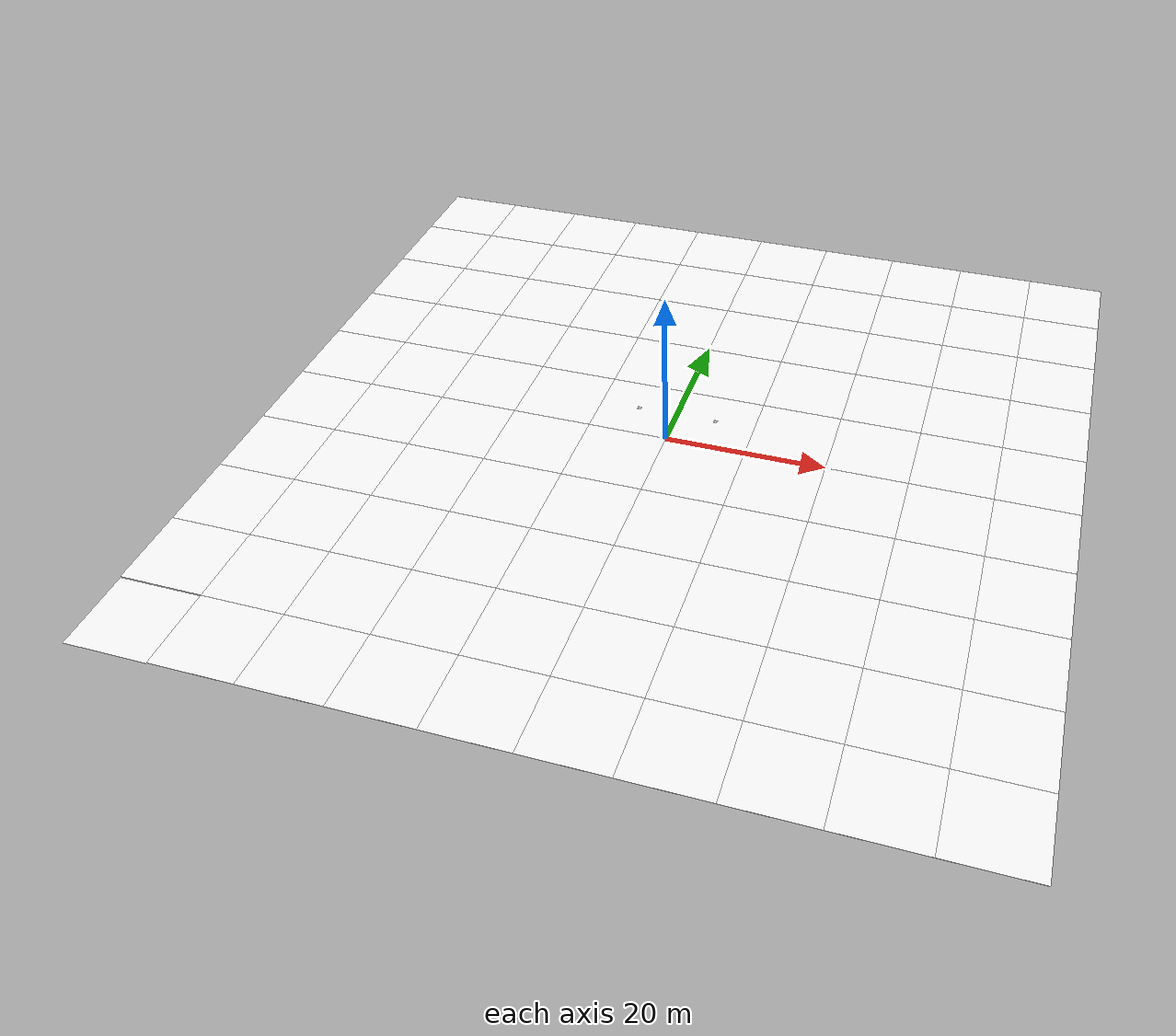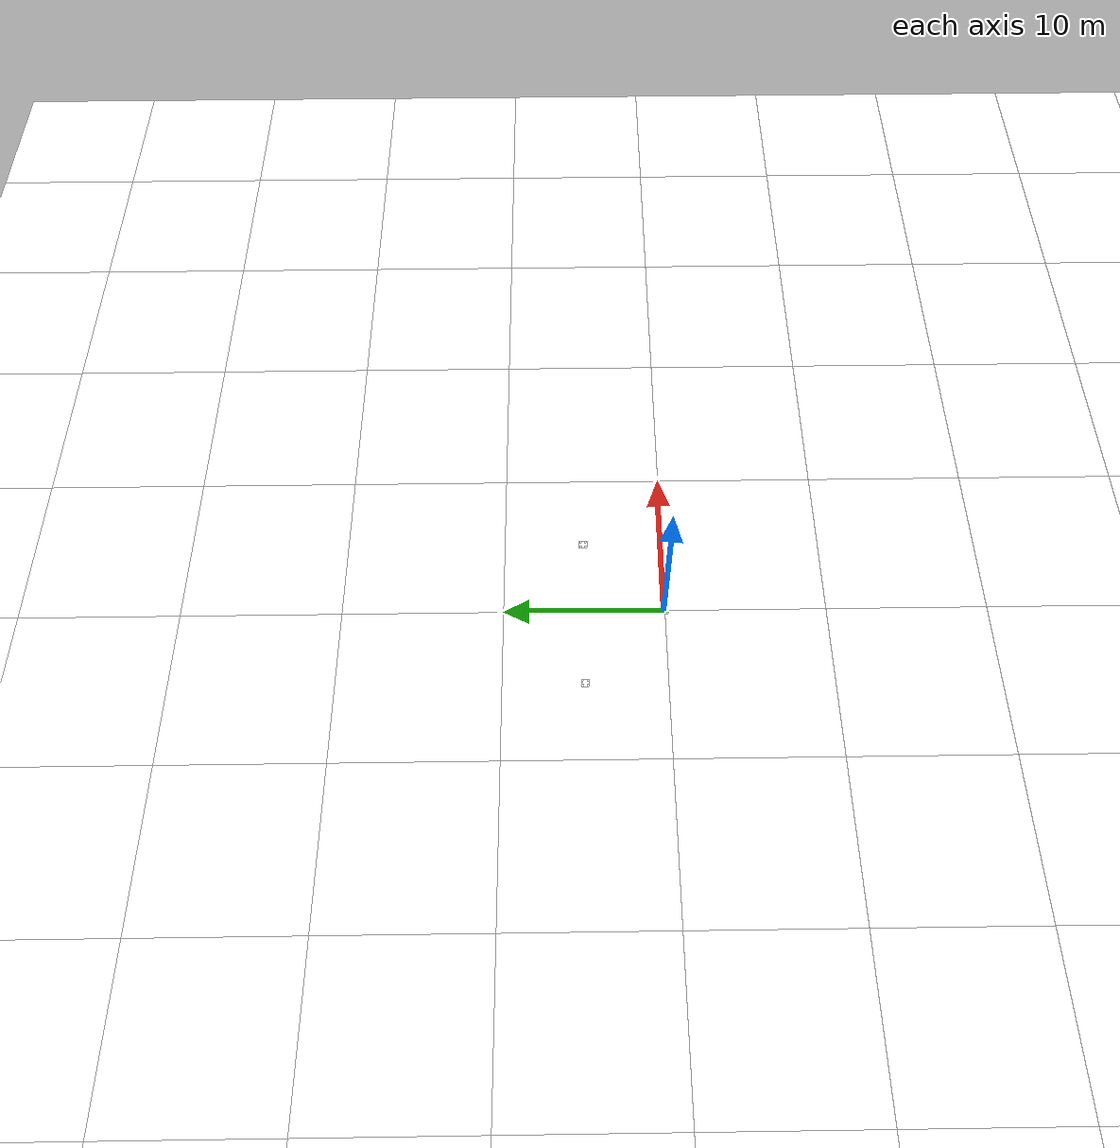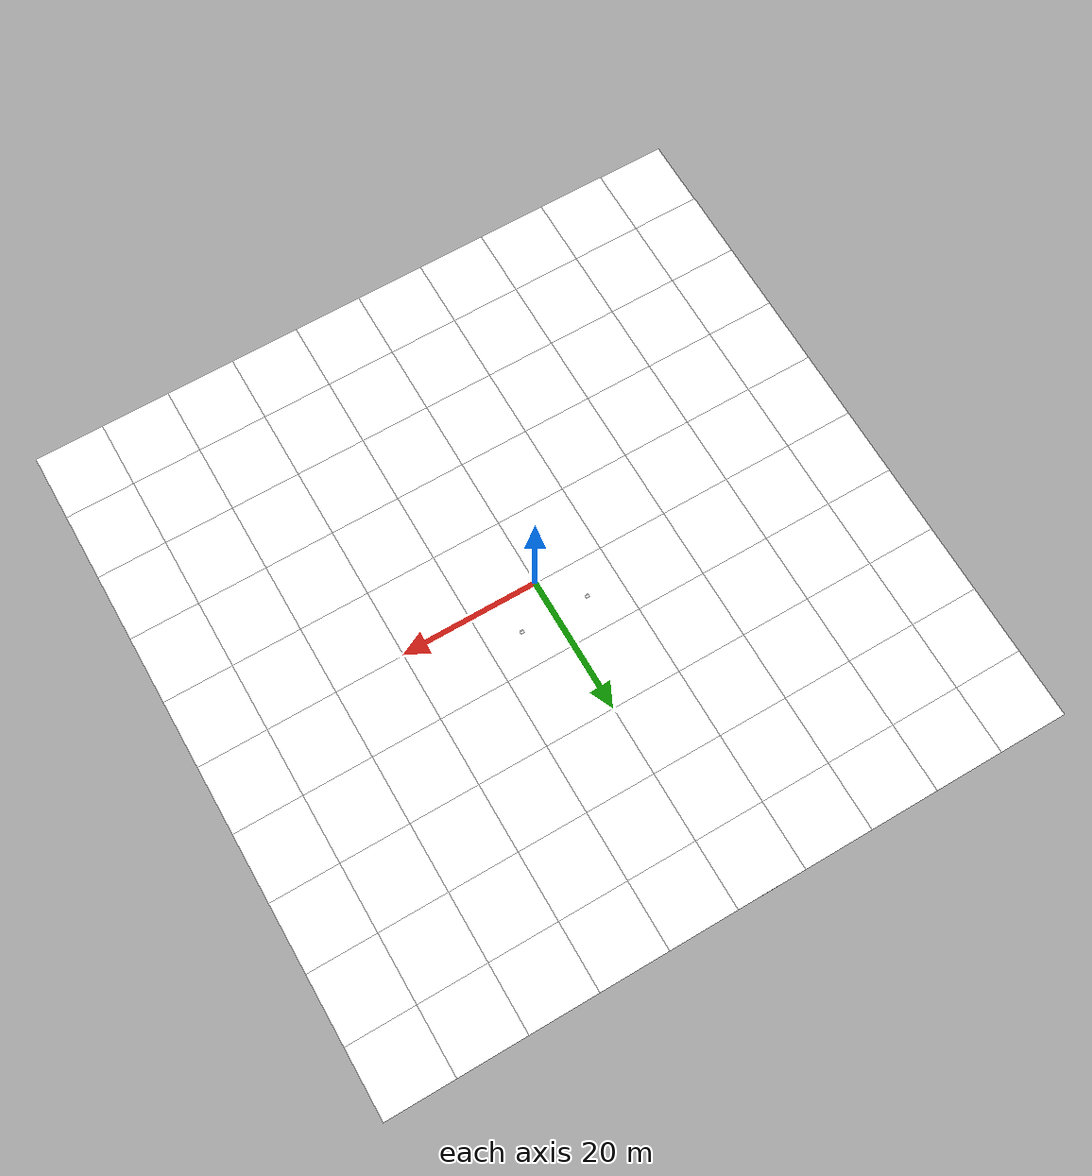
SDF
<?xml version="1.0" encoding="UTF-8"?>
<sdf version="1.9">
  <world name="aruco">
    <physics type="ode">
      <max_step_size>0.004</max_step_size>
      <real_time_factor>1.0</real_time_factor>
      <real_time_update_rate>250</real_time_update_rate>
    </physics>
    <gravity>0 0 -9.8</gravity>
    <magnetic_field>6e-06 2.3e-05 -4.2e-05</magnetic_field>
    <atmosphere type="adiabatic"/>
    <scene>
      <grid>false</grid>
      <ambient>0.4 0.4 0.4 1</ambient>
      <background>0.7 0.7 0.7 1</background>
      <shadows>true</shadows>
    </scene>
    <include>
      <uri>model://grass_ground</uri>
      <pose>0 0 0 0 0 0</pose>
    </include>
    <light name="sunUTC" type="directional">
      <pose>0 0 500 0 -0 0</pose>
      <cast_shadows>true</cast_shadows>
      <intensity>1</intensity>
      <direction>0.001 0.625 -0.78</direction>
      <diffuse>0.904 0.904 0.904 1</diffuse>
      <specular>0.271 0.271 0.271 1</specular>
      <attenuation>
        <range>2000</range>
        <linear>0</linear>
        <constant>1</constant>
        <quadratic>0</quadratic>
      </attenuation>
      <spot>
        <inner_angle>0</inner_angle>
        <outer_angle>0</outer_angle>
        <falloff>0</falloff>
      </spot>
    </light>
    <spherical_coordinates>
      <surface_model>EARTH_WGS84</surface_model>
      <world_frame_orientation>ENU</world_frame_orientation>
      <latitude_deg>47.397971057728974</latitude_deg>
      <longitude_deg> 8.546163739800146</longitude_deg>
      <elevation>0</elevation>
    </spherical_coordinates>

    <include>
      <uri>model://arucotag</uri>
      <name>aruco_1</name>
      <pose>0 0 0.01 0 0 0</pose>
    </include>
    <include>
      <uri>model://arucotag</uri>
      <name>aruco_2</name>
      <pose>5 5 0.01 0 0 0</pose>
    </include>
    <include>
      <uri>model://arucotag</uri>
      <name>aruco_3</name>
      <pose>-5 5 0.01 0 0 0</pose>
    </include>
  </world>
</sdf>

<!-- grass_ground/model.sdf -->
<sdf version="1.9">
  <model name="grass_ground">
    <static>true</static>
    <link name="link">
      <collision name="collision">
        <geometry>
          <plane>
            <normal>0 0 1</normal>
            <size>100 100</size>
          </plane>
        </geometry>
      </collision>
      <!-- Grid of 10x10m tiles -->
      <visual name="tile_0_0"><pose>-45 -45 0 0 0 0</pose><cast_shadows>false</cast_shadows><geometry><plane><normal>0 0 1</normal><size>10 10</size></plane></geometry><material><diffuse>1 1 1 1</diffuse><ambient>1 1 1 1</ambient><pbr><metal><albedo_map>materials/textures/grass_dry.png</albedo_map></metal></pbr></material></visual>
      <visual name="tile_1_0"><pose>-35 -45 0 0 0 0</pose><cast_shadows>false</cast_shadows><geometry><plane><normal>0 0 1</normal><size>10 10</size></plane></geometry><material><diffuse>1 1 1 1</diffuse><ambient>1 1 1 1</ambient><pbr><metal><albedo_map>materials/textures/grass_dry.png</albedo_map></metal></pbr></material></visual>
      <visual name="tile_2_0"><pose>-25 -45 0 0 0 0</pose><cast_shadows>false</cast_shadows><geometry><plane><normal>0 0 1</normal><size>10 10</size></plane></geometry><material><diffuse>1 1 1 1</diffuse><ambient>1 1 1 1</ambient><pbr><metal><albedo_map>materials/textures/grass_dry.png</albedo_map></metal></pbr></material></visual>
      <visual name="tile_3_0"><pose>-15 -45 0 0 0 0</pose><cast_shadows>false</cast_shadows><geometry><plane><normal>0 0 1</normal><size>10 10</size></plane></geometry><material><diffuse>1 1 1 1</diffuse><ambient>1 1 1 1</ambient><pbr><metal><albedo_map>materials/textures/grass_dry.png</albedo_map></metal></pbr></material></visual>
      <visual name="tile_4_0"><pose>-5 -45 0 0 0 0</pose><cast_shadows>false</cast_shadows><geometry><plane><normal>0 0 1</normal><size>10 10</size></plane></geometry><material><diffuse>1 1 1 1</diffuse><ambient>1 1 1 1</ambient><pbr><metal><albedo_map>materials/textures/grass_dry.png</albedo_map></metal></pbr></material></visual>
      <visual name="tile_5_0"><pose>5 -45 0 0 0 0</pose><cast_shadows>false</cast_shadows><geometry><plane><normal>0 0 1</normal><size>10 10</size></plane></geometry><material><diffuse>1 1 1 1</diffuse><ambient>1 1 1 1</ambient><pbr><metal><albedo_map>materials/textures/grass_dry.png</albedo_map></metal></pbr></material></visual>
      <visual name="tile_6_0"><pose>15 -45 0 0 0 0</pose><cast_shadows>false</cast_shadows><geometry><plane><normal>0 0 1</normal><size>10 10</size></plane></geometry><material><diffuse>1 1 1 1</diffuse><ambient>1 1 1 1</ambient><pbr><metal><albedo_map>materials/textures/grass_dry.png</albedo_map></metal></pbr></material></visual>
      <visual name="tile_7_0"><pose>25 -45 0 0 0 0</pose><cast_shadows>false</cast_shadows><geometry><plane><normal>0 0 1</normal><size>10 10</size></plane></geometry><material><diffuse>1 1 1 1</diffuse><ambient>1 1 1 1</ambient><pbr><metal><albedo_map>materials/textures/grass_dry.png</albedo_map></metal></pbr></material></visual>
      <visual name="tile_8_0"><pose>35 -45 0 0 0 0</pose><cast_shadows>false</cast_shadows><geometry><plane><normal>0 0 1</normal><size>10 10</size></plane></geometry><material><diffuse>1 1 1 1</diffuse><ambient>1 1 1 1</ambient><pbr><metal><albedo_map>materials/textures/grass_dry.png</albedo_map></metal></pbr></material></visual>
      <visual name="tile_9_0"><pose>45 -45 0 0 0 0</pose><cast_shadows>false</cast_shadows><geometry><plane><normal>0 0 1</normal><size>10 10</size></plane></geometry><material><diffuse>1 1 1 1</diffuse><ambient>1 1 1 1</ambient><pbr><metal><albedo_map>materials/textures/grass_dry.png</albedo_map></metal></pbr></material></visual>
      <visual name="tile_0_1"><pose>-45 -35 0 0 0 0</pose><cast_shadows>false</cast_shadows><geometry><plane><normal>0 0 1</normal><size>10 10</size></plane></geometry><material><diffuse>1 1 1 1</diffuse><ambient>1 1 1 1</ambient><pbr><metal><albedo_map>materials/textures/grass_dry.png</albedo_map></metal></pbr></material></visual>
      <visual name="tile_1_1"><pose>-35 -35 0 0 0 0</pose><cast_shadows>false</cast_shadows><geometry><plane><normal>0 0 1</normal><size>10 10</size></plane></geometry><material><diffuse>1 1 1 1</diffuse><ambient>1 1 1 1</ambient><pbr><metal><albedo_map>materials/textures/grass_dry.png</albedo_map></metal></pbr></material></visual>
      <visual name="tile_2_1"><pose>-25 -35 0 0 0 0</pose><cast_shadows>false</cast_shadows><geometry><plane><normal>0 0 1</normal><size>10 10</size></plane></geometry><material><diffuse>1 1 1 1</diffuse><ambient>1 1 1 1</ambient><pbr><metal><albedo_map>materials/textures/grass_dry.png</albedo_map></metal></pbr></material></visual>
      <visual name="tile_3_1"><pose>-15 -35 0 0 0 0</pose><cast_shadows>false</cast_shadows><geometry><plane><normal>0 0 1</normal><size>10 10</size></plane></geometry><material><diffuse>1 1 1 1</diffuse><ambient>1 1 1 1</ambient><pbr><metal><albedo_map>materials/textures/grass_dry.png</albedo_map></metal></pbr></material></visual>
      <visual name="tile_4_1"><pose>-5 -35 0 0 0 0</pose><cast_shadows>false</cast_shadows><geometry><plane><normal>0 0 1</normal><size>10 10</size></plane></geometry><material><diffuse>1 1 1 1</diffuse><ambient>1 1 1 1</ambient><pbr><metal><albedo_map>materials/textures/grass_dry.png</albedo_map></metal></pbr></material></visual>
      <visual name="tile_5_1"><pose>5 -35 0 0 0 0</pose><cast_shadows>false</cast_shadows><geometry><plane><normal>0 0 1</normal><size>10 10</size></plane></geometry><material><diffuse>1 1 1 1</diffuse><ambient>1 1 1 1</ambient><pbr><metal><albedo_map>materials/textures/grass_dry.png</albedo_map></metal></pbr></material></visual>
      <visual name="tile_6_1"><pose>15 -35 0 0 0 0</pose><cast_shadows>false</cast_shadows><geometry><plane><normal>0 0 1</normal><size>10 10</size></plane></geometry><material><diffuse>1 1 1 1</diffuse><ambient>1 1 1 1</ambient><pbr><metal><albedo_map>materials/textures/grass_dry.png</albedo_map></metal></pbr></material></visual>
      <visual name="tile_7_1"><pose>25 -35 0 0 0 0</pose><cast_shadows>false</cast_shadows><geometry><plane><normal>0 0 1</normal><size>10 10</size></plane></geometry><material><diffuse>1 1 1 1</diffuse><ambient>1 1 1 1</ambient><pbr><metal><albedo_map>materials/textures/grass_dry.png</albedo_map></metal></pbr></material></visual>
      <visual name="tile_8_1"><pose>35 -35 0 0 0 0</pose><cast_shadows>false</cast_shadows><geometry><plane><normal>0 0 1</normal><size>10 10</size></plane></geometry><material><diffuse>1 1 1 1</diffuse><ambient>1 1 1 1</ambient><pbr><metal><albedo_map>materials/textures/grass_dry.png</albedo_map></metal></pbr></material></visual>
      <visual name="tile_9_1"><pose>45 -35 0 0 0 0</pose><cast_shadows>false</cast_shadows><geometry><plane><normal>0 0 1</normal><size>10 10</size></plane></geometry><material><diffuse>1 1 1 1</diffuse><ambient>1 1 1 1</ambient><pbr><metal><albedo_map>materials/textures/grass_dry.png</albedo_map></metal></pbr></material></visual>
      <visual name="tile_0_2"><pose>-45 -25 0 0 0 0</pose><cast_shadows>false</cast_shadows><geometry><plane><normal>0 0 1</normal><size>10 10</size></plane></geometry><material><diffuse>1 1 1 1</diffuse><ambient>1 1 1 1</ambient><pbr><metal><albedo_map>materials/textures/grass_dry.png</albedo_map></metal></pbr></material></visual>
      <visual name="tile_1_2"><pose>-35 -25 0 0 0 0</pose><cast_shadows>false</cast_shadows><geometry><plane><normal>0 0 1</normal><size>10 10</size></plane></geometry><material><diffuse>1 1 1 1</diffuse><ambient>1 1 1 1</ambient><pbr><metal><albedo_map>materials/textures/grass_dry.png</albedo_map></metal></pbr></material></visual>
      <visual name="tile_2_2"><pose>-25 -25 0 0 0 0</pose><cast_shadows>false</cast_shadows><geometry><plane><normal>0 0 1</normal><size>10 10</size></plane></geometry><material><diffuse>1 1 1 1</diffuse><ambient>1 1 1 1</ambient><pbr><metal><albedo_map>materials/textures/grass_dry.png</albedo_map></metal></pbr></material></visual>
      <visual name="tile_3_2"><pose>-15 -25 0 0 0 0</pose><cast_shadows>false</cast_shadows><geometry><plane><normal>0 0 1</normal><size>10 10</size></plane></geometry><material><diffuse>1 1 1 1</diffuse><ambient>1 1 1 1</ambient><pbr><metal><albedo_map>materials/textures/grass_dry.png</albedo_map></metal></pbr></material></visual>
      <visual name="tile_4_2"><pose>-5 -25 0 0 0 0</pose><cast_shadows>false</cast_shadows><geometry><plane><normal>0 0 1</normal><size>10 10</size></plane></geometry><material><diffuse>1 1 1 1</diffuse><ambient>1 1 1 1</ambient><pbr><metal><albedo_map>materials/textures/grass_dry.png</albedo_map></metal></pbr></material></visual>
      <visual name="tile_5_2"><pose>5 -25 0 0 0 0</pose><cast_shadows>false</cast_shadows><geometry><plane><normal>0 0 1</normal><size>10 10</size></plane></geometry><material><diffuse>1 1 1 1</diffuse><ambient>1 1 1 1</ambient><pbr><metal><albedo_map>materials/textures/grass_dry.png</albedo_map></metal></pbr></material></visual>
      <visual name="tile_6_2"><pose>15 -25 0 0 0 0</pose><cast_shadows>false</cast_shadows><geometry><plane><normal>0 0 1</normal><size>10 10</size></plane></geometry><material><diffuse>1 1 1 1</diffuse><ambient>1 1 1 1</ambient><pbr><metal><albedo_map>materials/textures/grass_dry.png</albedo_map></metal></pbr></material></visual>
      <visual name="tile_7_2"><pose>25 -25 0 0 0 0</pose><cast_shadows>false</cast_shadows><geometry><plane><normal>0 0 1</normal><size>10 10</size></plane></geometry><material><diffuse>1 1 1 1</diffuse><ambient>1 1 1 1</ambient><pbr><metal><albedo_map>materials/textures/grass_dry.png</albedo_map></metal></pbr></material></visual>
      <visual name="tile_8_2"><pose>35 -25 0 0 0 0</pose><cast_shadows>false</cast_shadows><geometry><plane><normal>0 0 1</normal><size>10 10</size></plane></geometry><material><diffuse>1 1 1 1</diffuse><ambient>1 1 1 1</ambient><pbr><metal><albedo_map>materials/textures/grass_dry.png</albedo_map></metal></pbr></material></visual>
      <visual name="tile_9_2"><pose>45 -25 0 0 0 0</pose><cast_shadows>false</cast_shadows><geometry><plane><normal>0 0 1</normal><size>10 10</size></plane></geometry><material><diffuse>1 1 1 1</diffuse><ambient>1 1 1 1</ambient><pbr><metal><albedo_map>materials/textures/grass_dry.png</albedo_map></metal></pbr></material></visual>
      <visual name="tile_0_3"><pose>-45 -15 0 0 0 0</pose><cast_shadows>false</cast_shadows><geometry><plane><normal>0 0 1</normal><size>10 10</size></plane></geometry><material><diffuse>1 1 1 1</diffuse><ambient>1 1 1 1</ambient><pbr><metal><albedo_map>materials/textures/grass_dry.png</albedo_map></metal></pbr></material></visual>
      <visual name="tile_1_3"><pose>-35 -15 0 0 0 0</pose><cast_shadows>false</cast_shadows><geometry><plane><normal>0 0 1</normal><size>10 10</size></plane></geometry><material><diffuse>1 1 1 1</diffuse><ambient>1 1 1 1</ambient><pbr><metal><albedo_map>materials/textures/grass_dry.png</albedo_map></metal></pbr></material></visual>
      <visual name="tile_2_3"><pose>-25 -15 0 0 0 0</pose><cast_shadows>false</cast_shadows><geometry><plane><normal>0 0 1</normal><size>10 10</size></plane></geometry><material><diffuse>1 1 1 1</diffuse><ambient>1 1 1 1</ambient><pbr><metal><albedo_map>materials/textures/grass_dry.png</albedo_map></metal></pbr></material></visual>
      <visual name="tile_3_3"><pose>-15 -15 0 0 0 0</pose><cast_shadows>false</cast_shadows><geometry><plane><normal>0 0 1</normal><size>10 10</size></plane></geometry><material><diffuse>1 1 1 1</diffuse><ambient>1 1 1 1</ambient><pbr><metal><albedo_map>materials/textures/grass_dry.png</albedo_map></metal></pbr></material></visual>
      <visual name="tile_4_3"><pose>-5 -15 0 0 0 0</pose><cast_shadows>false</cast_shadows><geometry><plane><normal>0 0 1</normal><size>10 10</size></plane></geometry><material><diffuse>1 1 1 1</diffuse><ambient>1 1 1 1</ambient><pbr><metal><albedo_map>materials/textures/grass_dry.png</albedo_map></metal></pbr></material></visual>
      <visual name="tile_5_3"><pose>5 -15 0 0 0 0</pose><cast_shadows>false</cast_shadows><geometry><plane><normal>0 0 1</normal><size>10 10</size></plane></geometry><material><diffuse>1 1 1 1</diffuse><ambient>1 1 1 1</ambient><pbr><metal><albedo_map>materials/textures/grass_dry.png</albedo_map></metal></pbr></material></visual>
      <visual name="tile_6_3"><pose>15 -15 0 0 0 0</pose><cast_shadows>false</cast_shadows><geometry><plane><normal>0 0 1</normal><size>10 10</size></plane></geometry><material><diffuse>1 1 1 1</diffuse><ambient>1 1 1 1</ambient><pbr><metal><albedo_map>materials/textures/grass_dry.png</albedo_map></metal></pbr></material></visual>
      <visual name="tile_7_3"><pose>25 -15 0 0 0 0</pose><cast_shadows>false</cast_shadows><geometry><plane><normal>0 0 1</normal><size>10 10</size></plane></geometry><material><diffuse>1 1 1 1</diffuse><ambient>1 1 1 1</ambient><pbr><metal><albedo_map>materials/textures/grass_dry.png</albedo_map></metal></pbr></material></visual>
      <visual name="tile_8_3"><pose>35 -15 0 0 0 0</pose><cast_shadows>false</cast_shadows><geometry><plane><normal>0 0 1</normal><size>10 10</size></plane></geometry><material><diffuse>1 1 1 1</diffuse><ambient>1 1 1 1</ambient><pbr><metal><albedo_map>materials/textures/grass_dry.png</albedo_map></metal></pbr></material></visual>
      <visual name="tile_9_3"><pose>45 -15 0 0 0 0</pose><cast_shadows>false</cast_shadows><geometry><plane><normal>0 0 1</normal><size>10 10</size></plane></geometry><material><diffuse>1 1 1 1</diffuse><ambient>1 1 1 1</ambient><pbr><metal><albedo_map>materials/textures/grass_dry.png</albedo_map></metal></pbr></material></visual>
      <visual name="tile_0_4"><pose>-45 -5 0 0 0 0</pose><cast_shadows>false</cast_shadows><geometry><plane><normal>0 0 1</normal><size>10 10</size></plane></geometry><material><diffuse>1 1 1 1</diffuse><ambient>1 1 1 1</ambient><pbr><metal><albedo_map>materials/textures/grass_dry.png</albedo_map></metal></pbr></material></visual>
      <visual name="tile_1_4"><pose>-35 -5 0 0 0 0</pose><cast_shadows>false</cast_shadows><geometry><plane><normal>0 0 1</normal><size>10 10</size></plane></geometry><material><diffuse>1 1 1 1</diffuse><ambient>1 1 1 1</ambient><pbr><metal><albedo_map>materials/textures/grass_dry.png</albedo_map></metal></pbr></material></visual>
      <visual name="tile_2_4"><pose>-25 -5 0 0 0 0</pose><cast_shadows>false</cast_shadows><geometry><plane><normal>0 0 1</normal><size>10 10</size></plane></geometry><material><diffuse>1 1 1 1</diffuse><ambient>1 1 1 1</ambient><pbr><metal><albedo_map>materials/textures/grass_dry.png</albedo_map></metal></pbr></material></visual>
      <visual name="tile_3_4"><pose>-15 -5 0 0 0 0</pose><cast_shadows>false</cast_shadows><geometry><plane><normal>0 0 1</normal><size>10 10</size></plane></geometry><material><diffuse>1 1 1 1</diffuse><ambient>1 1 1 1</ambient><pbr><metal><albedo_map>materials/textures/grass_dry.png</albedo_map></metal></pbr></material></visual>
      <visual name="tile_4_4"><pose>-5 -5 0 0 0 0</pose><cast_shadows>false</cast_shadows><geometry><plane><normal>0 0 1</normal><size>10 10</size></plane></geometry><material><diffuse>1 1 1 1</diffuse><ambient>1 1 1 1</ambient><pbr><metal><albedo_map>materials/textures/grass_dry.png</albedo_map></metal></pbr></material></visual>
      <visual name="tile_5_4"><pose>5 -5 0 0 0 0</pose><cast_shadows>false</cast_shadows><geometry><plane><normal>0 0 1</normal><size>10 10</size></plane></geometry><material><diffuse>1 1 1 1</diffuse><ambient>1 1 1 1</ambient><pbr><metal><albedo_map>materials/textures/grass_dry.png</albedo_map></metal></pbr></material></visual>
      <visual name="tile_6_4"><pose>15 -5 0 0 0 0</pose><cast_shadows>false</cast_shadows><geometry><plane><normal>0 0 1</normal><size>10 10</size></plane></geometry><material><diffuse>1 1 1 1</diffuse><ambient>1 1 1 1</ambient><pbr><metal><albedo_map>materials/textures/grass_dry.png</albedo_map></metal></pbr></material></visual>
      <visual name="tile_7_4"><pose>25 -5 0 0 0 0</pose><cast_shadows>false</cast_shadows><geometry><plane><normal>0 0 1</normal><size>10 10</size></plane></geometry><material><diffuse>1 1 1 1</diffuse><ambient>1 1 1 1</ambient><pbr><metal><albedo_map>materials/textures/grass_dry.png</albedo_map></metal></pbr></material></visual>
      <visual name="tile_8_4"><pose>35 -5 0 0 0 0</pose><cast_shadows>false</cast_shadows><geometry><plane><normal>0 0 1</normal><size>10 10</size></plane></geometry><material><diffuse>1 1 1 1</diffuse><ambient>1 1 1 1</ambient><pbr><metal><albedo_map>materials/textures/grass_dry.png</albedo_map></metal></pbr></material></visual>
      <visual name="tile_9_4"><pose>45 -5 0 0 0 0</pose><cast_shadows>false</cast_shadows><geometry><plane><normal>0 0 1</normal><size>10 10</size></plane></geometry><material><diffuse>1 1 1 1</diffuse><ambient>1 1 1 1</ambient><pbr><metal><albedo_map>materials/textures/grass_dry.png</albedo_map></metal></pbr></material></visual>
      <visual name="tile_0_5"><pose>-45 5 0 0 0 0</pose><cast_shadows>false</cast_shadows><geometry><plane><normal>0 0 1</normal><size>10 10</size></plane></geometry><material><diffuse>1 1 1 1</diffuse><ambient>1 1 1 1</ambient><pbr><metal><albedo_map>materials/textures/grass_dry.png</albedo_map></metal></pbr></material></visual>
      <visual name="tile_1_5"><pose>-35 5 0 0 0 0</pose><cast_shadows>false</cast_shadows><geometry><plane><normal>0 0 1</normal><size>10 10</size></plane></geometry><material><diffuse>1 1 1 1</diffuse><ambient>1 1 1 1</ambient><pbr><metal><albedo_map>materials/textures/grass_dry.png</albedo_map></metal></pbr></material></visual>
      <visual name="tile_2_5"><pose>-25 5 0 0 0 0</pose><cast_shadows>false</cast_shadows><geometry><plane><normal>0 0 1</normal><size>10 10</size></plane></geometry><material><diffuse>1 1 1 1</diffuse><ambient>1 1 1 1</ambient><pbr><metal><albedo_map>materials/textures/grass_dry.png</albedo_map></metal></pbr></material></visual>
      <visual name="tile_3_5"><pose>-15 5 0 0 0 0</pose><cast_shadows>false</cast_shadows><geometry><plane><normal>0 0 1</normal><size>10 10</size></plane></geometry><material><diffuse>1 1 1 1</diffuse><ambient>1 1 1 1</ambient><pbr><metal><albedo_map>materials/textures/grass_dry.png</albedo_map></metal></pbr></material></visual>
      <visual name="tile_4_5"><pose>-5 5 0 0 0 0</pose><cast_shadows>false</cast_shadows><geometry><plane><normal>0 0 1</normal><size>10 10</size></plane></geometry><material><diffuse>1 1 1 1</diffuse><ambient>1 1 1 1</ambient><pbr><metal><albedo_map>materials/textures/grass_dry.png</albedo_map></metal></pbr></material></visual>
      <visual name="tile_5_5"><pose>5 5 0 0 0 0</pose><cast_shadows>false</cast_shadows><geometry><plane><normal>0 0 1</normal><size>10 10</size></plane></geometry><material><diffuse>1 1 1 1</diffuse><ambient>1 1 1 1</ambient><pbr><metal><albedo_map>materials/textures/grass_dry.png</albedo_map></metal></pbr></material></visual>
      <visual name="tile_6_5"><pose>15 5 0 0 0 0</pose><cast_shadows>false</cast_shadows><geometry><plane><normal>0 0 1</normal><size>10 10</size></plane></geometry><material><diffuse>1 1 1 1</diffuse><ambient>1 1 1 1</ambient><pbr><metal><albedo_map>materials/textures/grass_dry.png</albedo_map></metal></pbr></material></visual>
      <visual name="tile_7_5"><pose>25 5 0 0 0 0</pose><cast_shadows>false</cast_shadows><geometry><plane><normal>0 0 1</normal><size>10 10</size></plane></geometry><material><diffuse>1 1 1 1</diffuse><ambient>1 1 1 1</ambient><pbr><metal><albedo_map>materials/textures/grass_dry.png</albedo_map></metal></pbr></material></visual>
      <visual name="tile_8_5"><pose>35 5 0 0 0 0</pose><cast_shadows>false</cast_shadows><geometry><plane><normal>0 0 1</normal><size>10 10</size></plane></geometry><material><diffuse>1 1 1 1</diffuse><ambient>1 1 1 1</ambient><pbr><metal><albedo_map>materials/textures/grass_dry.png</albedo_map></metal></pbr></material></visual>
      <visual name="tile_9_5"><pose>45 5 0 0 0 0</pose><cast_shadows>false</cast_shadows><geometry><plane><normal>0 0 1</normal><size>10 10</size></plane></geometry><material><diffuse>1 1 1 1</diffuse><ambient>1 1 1 1</ambient><pbr><metal><albedo_map>materials/textures/grass_dry.png</albedo_map></metal></pbr></material></visual>
      <visual name="tile_0_6"><pose>-45 15 0 0 0 0</pose><cast_shadows>false</cast_shadows><geometry><plane><normal>0 0 1</normal><size>10 10</size></plane></geometry><material><diffuse>1 1 1 1</diffuse><ambient>1 1 1 1</ambient><pbr><metal><albedo_map>materials/textures/grass_dry.png</albedo_map></metal></pbr></material></visual>
      <visual name="tile_1_6"><pose>-35 15 0 0 0 0</pose><cast_shadows>false</cast_shadows><geometry><plane><normal>0 0 1</normal><size>10 10</size></plane></geometry><material><diffuse>1 1 1 1</diffuse><ambient>1 1 1 1</ambient><pbr><metal><albedo_map>materials/textures/grass_dry.png</albedo_map></metal></pbr></material></visual>
      <visual name="tile_2_6"><pose>-25 15 0 0 0 0</pose><cast_shadows>false</cast_shadows><geometry><plane><normal>0 0 1</normal><size>10 10</size></plane></geometry><material><diffuse>1 1 1 1</diffuse><ambient>1 1 1 1</ambient><pbr><metal><albedo_map>materials/textures/grass_dry.png</albedo_map></metal></pbr></material></visual>
      <visual name="tile_3_6"><pose>-15 15 0 0 0 0</pose><cast_shadows>false</cast_shadows><geometry><plane><normal>0 0 1</normal><size>10 10</size></plane></geometry><material><diffuse>1 1 1 1</diffuse><ambient>1 1 1 1</ambient><pbr><metal><albedo_map>materials/textures/grass_dry.png</albedo_map></metal></pbr></material></visual>
      <visual name="tile_4_6"><pose>-5 15 0 0 0 0</pose><cast_shadows>false</cast_shadows><geometry><plane><normal>0 0 1</normal><size>10 10</size></plane></geometry><material><diffuse>1 1 1 1</diffuse><ambient>1 1 1 1</ambient><pbr><metal><albedo_map>materials/textures/grass_dry.png</albedo_map></metal></pbr></material></visual>
      <visual name="tile_5_6"><pose>5 15 0 0 0 0</pose><cast_shadows>false</cast_shadows><geometry><plane><normal>0 0 1</normal><size>10 10</size></plane></geometry><material><diffuse>1 1 1 1</diffuse><ambient>1 1 1 1</ambient><pbr><metal><albedo_map>materials/textures/grass_dry.png</albedo_map></metal></pbr></material></visual>
      <visual name="tile_6_6"><pose>15 15 0 0 0 0</pose><cast_shadows>false</cast_shadows><geometry><plane><normal>0 0 1</normal><size>10 10</size></plane></geometry><material><diffuse>1 1 1 1</diffuse><ambient>1 1 1 1</ambient><pbr><metal><albedo_map>materials/textures/grass_dry.png</albedo_map></metal></pbr></material></visual>
      <visual name="tile_7_6"><pose>25 15 0 0 0 0</pose><cast_shadows>false</cast_shadows><geometry><plane><normal>0 0 1</normal><size>10 10</size></plane></geometry><material><diffuse>1 1 1 1</diffuse><ambient>1 1 1 1</ambient><pbr><metal><albedo_map>materials/textures/grass_dry.png</albedo_map></metal></pbr></material></visual>
      <visual name="tile_8_6"><pose>35 15 0 0 0 0</pose><cast_shadows>false</cast_shadows><geometry><plane><normal>0 0 1</normal><size>10 10</size></plane></geometry><material><diffuse>1 1 1 1</diffuse><ambient>1 1 1 1</ambient><pbr><metal><albedo_map>materials/textures/grass_dry.png</albedo_map></metal></pbr></material></visual>
      <visual name="tile_9_6"><pose>45 15 0 0 0 0</pose><cast_shadows>false</cast_shadows><geometry><plane><normal>0 0 1</normal><size>10 10</size></plane></geometry><material><diffuse>1 1 1 1</diffuse><ambient>1 1 1 1</ambient><pbr><metal><albedo_map>materials/textures/grass_dry.png</albedo_map></metal></pbr></material></visual>
      <visual name="tile_0_7"><pose>-45 25 0 0 0 0</pose><cast_shadows>false</cast_shadows><geometry><plane><normal>0 0 1</normal><size>10 10</size></plane></geometry><material><diffuse>1 1 1 1</diffuse><ambient>1 1 1 1</ambient><pbr><metal><albedo_map>materials/textures/grass_dry.png</albedo_map></metal></pbr></material></visual>
      <visual name="tile_1_7"><pose>-35 25 0 0 0 0</pose><cast_shadows>false</cast_shadows><geometry><plane><normal>0 0 1</normal><size>10 10</size></plane></geometry><material><diffuse>1 1 1 1</diffuse><ambient>1 1 1 1</ambient><pbr><metal><albedo_map>materials/textures/grass_dry.png</albedo_map></metal></pbr></material></visual>
      <visual name="tile_2_7"><pose>-25 25 0 0 0 0</pose><cast_shadows>false</cast_shadows><geometry><plane><normal>0 0 1</normal><size>10 10</size></plane></geometry><material><diffuse>1 1 1 1</diffuse><ambient>1 1 1 1</ambient><pbr><metal><albedo_map>materials/textures/grass_dry.png</albedo_map></metal></pbr></material></visual>
      <visual name="tile_3_7"><pose>-15 25 0 0 0 0</pose><cast_shadows>false</cast_shadows><geometry><plane><normal>0 0 1</normal><size>10 10</size></plane></geometry><material><diffuse>1 1 1 1</diffuse><ambient>1 1 1 1</ambient><pbr><metal><albedo_map>materials/textures/grass_dry.png</albedo_map></metal></pbr></material></visual>
      <visual name="tile_4_7"><pose>-5 25 0 0 0 0</pose><cast_shadows>false</cast_shadows><geometry><plane><normal>0 0 1</normal><size>10 10</size></plane></geometry><material><diffuse>1 1 1 1</diffuse><ambient>1 1 1 1</ambient><pbr><metal><albedo_map>materials/textures/grass_dry.png</albedo_map></metal></pbr></material></visual>
      <visual name="tile_5_7"><pose>5 25 0 0 0 0</pose><cast_shadows>false</cast_shadows><geometry><plane><normal>0 0 1</normal><size>10 10</size></plane></geometry><material><diffuse>1 1 1 1</diffuse><ambient>1 1 1 1</ambient><pbr><metal><albedo_map>materials/textures/grass_dry.png</albedo_map></metal></pbr></material></visual>
      <visual name="tile_6_7"><pose>15 25 0 0 0 0</pose><cast_shadows>false</cast_shadows><geometry><plane><normal>0 0 1</normal><size>10 10</size></plane></geometry><material><diffuse>1 1 1 1</diffuse><ambient>1 1 1 1</ambient><pbr><metal><albedo_map>materials/textures/grass_dry.png</albedo_map></metal></pbr></material></visual>
      <visual name="tile_7_7"><pose>25 25 0 0 0 0</pose><cast_shadows>false</cast_shadows><geometry><plane><normal>0 0 1</normal><size>10 10</size></plane></geometry><material><diffuse>1 1 1 1</diffuse><ambient>1 1 1 1</ambient><pbr><metal><albedo_map>materials/textures/grass_dry.png</albedo_map></metal></pbr></material></visual>
      <visual name="tile_8_7"><pose>35 25 0 0 0 0</pose><cast_shadows>false</cast_shadows><geometry><plane><normal>0 0 1</normal><size>10 10</size></plane></geometry><material><diffuse>1 1 1 1</diffuse><ambient>1 1 1 1</ambient><pbr><metal><albedo_map>materials/textures/grass_dry.png</albedo_map></metal></pbr></material></visual>
      <visual name="tile_9_7"><pose>45 25 0 0 0 0</pose><cast_shadows>false</cast_shadows><geometry><plane><normal>0 0 1</normal><size>10 10</size></plane></geometry><material><diffuse>1 1 1 1</diffuse><ambient>1 1 1 1</ambient><pbr><metal><albedo_map>materials/textures/grass_dry.png</albedo_map></metal></pbr></material></visual>
      <visual name="tile_0_8"><pose>-45 35 0 0 0 0</pose><cast_shadows>false</cast_shadows><geometry><plane><normal>0 0 1</normal><size>10 10</size></plane></geometry><material><diffuse>1 1 1 1</diffuse><ambient>1 1 1 1</ambient><pbr><metal><albedo_map>materials/textures/grass_dry.png</albedo_map></metal></pbr></material></visual>
      <visual name="tile_1_8"><pose>-35 35 0 0 0 0</pose><cast_shadows>false</cast_shadows><geometry><plane><normal>0 0 1</normal><size>10 10</size></plane></geometry><material><diffuse>1 1 1 1</diffuse><ambient>1 1 1 1</ambient><pbr><metal><albedo_map>materials/textures/grass_dry.png</albedo_map></metal></pbr></material></visual>
      <visual name="tile_2_8"><pose>-25 35 0 0 0 0</pose><cast_shadows>false</cast_shadows><geometry><plane><normal>0 0 1</normal><size>10 10</size></plane></geometry><material><diffuse>1 1 1 1</diffuse><ambient>1 1 1 1</ambient><pbr><metal><albedo_map>materials/textures/grass_dry.png</albedo_map></metal></pbr></material></visual>
      <visual name="tile_3_8"><pose>-15 35 0 0 0 0</pose><cast_shadows>false</cast_shadows><geometry><plane><normal>0 0 1</normal><size>10 10</size></plane></geometry><material><diffuse>1 1 1 1</diffuse><ambient>1 1 1 1</ambient><pbr><metal><albedo_map>materials/textures/grass_dry.png</albedo_map></metal></pbr></material></visual>
      <visual name="tile_4_8"><pose>-5 35 0 0 0 0</pose><cast_shadows>false</cast_shadows><geometry><plane><normal>0 0 1</normal><size>10 10</size></plane></geometry><material><diffuse>1 1 1 1</diffuse><ambient>1 1 1 1</ambient><pbr><metal><albedo_map>materials/textures/grass_dry.png</albedo_map></metal></pbr></material></visual>
      <visual name="tile_5_8"><pose>5 35 0 0 0 0</pose><cast_shadows>false</cast_shadows><geometry><plane><normal>0 0 1</normal><size>10 10</size></plane></geometry><material><diffuse>1 1 1 1</diffuse><ambient>1 1 1 1</ambient><pbr><metal><albedo_map>materials/textures/grass_dry.png</albedo_map></metal></pbr></material></visual>
      <visual name="tile_6_8"><pose>15 35 0 0 0 0</pose><cast_shadows>false</cast_shadows><geometry><plane><normal>0 0 1</normal><size>10 10</size></plane></geometry><material><diffuse>1 1 1 1</diffuse><ambient>1 1 1 1</ambient><pbr><metal><albedo_map>materials/textures/grass_dry.png</albedo_map></metal></pbr></material></visual>
      <visual name="tile_7_8"><pose>25 35 0 0 0 0</pose><cast_shadows>false</cast_shadows><geometry><plane><normal>0 0 1</normal><size>10 10</size></plane></geometry><material><diffuse>1 1 1 1</diffuse><ambient>1 1 1 1</ambient><pbr><metal><albedo_map>materials/textures/grass_dry.png</albedo_map></metal></pbr></material></visual>
      <visual name="tile_8_8"><pose>35 35 0 0 0 0</pose><cast_shadows>false</cast_shadows><geometry><plane><normal>0 0 1</normal><size>10 10</size></plane></geometry><material><diffuse>1 1 1 1</diffuse><ambient>1 1 1 1</ambient><pbr><metal><albedo_map>materials/textures/grass_dry.png</albedo_map></metal></pbr></material></visual>
      <visual name="tile_9_8"><pose>45 35 0 0 0 0</pose><cast_shadows>false</cast_shadows><geometry><plane><normal>0 0 1</normal><size>10 10</size></plane></geometry><material><diffuse>1 1 1 1</diffuse><ambient>1 1 1 1</ambient><pbr><metal><albedo_map>materials/textures/grass_dry.png</albedo_map></metal></pbr></material></visual>
      <visual name="tile_0_9"><pose>-45 45 0 0 0 0</pose><cast_shadows>false</cast_shadows><geometry><plane><normal>0 0 1</normal><size>10 10</size></plane></geometry><material><diffuse>1 1 1 1</diffuse><ambient>1 1 1 1</ambient><pbr><metal><albedo_map>materials/textures/grass_dry.png</albedo_map></metal></pbr></material></visual>
      <visual name="tile_1_9"><pose>-35 45 0 0 0 0</pose><cast_shadows>false</cast_shadows><geometry><plane><normal>0 0 1</normal><size>10 10</size></plane></geometry><material><diffuse>1 1 1 1</diffuse><ambient>1 1 1 1</ambient><pbr><metal><albedo_map>materials/textures/grass_dry.png</albedo_map></metal></pbr></material></visual>
      <visual name="tile_2_9"><pose>-25 45 0 0 0 0</pose><cast_shadows>false</cast_shadows><geometry><plane><normal>0 0 1</normal><size>10 10</size></plane></geometry><material><diffuse>1 1 1 1</diffuse><ambient>1 1 1 1</ambient><pbr><metal><albedo_map>materials/textures/grass_dry.png</albedo_map></metal></pbr></material></visual>
      <visual name="tile_3_9"><pose>-15 45 0 0 0 0</pose><cast_shadows>false</cast_shadows><geometry><plane><normal>0 0 1</normal><size>10 10</size></plane></geometry><material><diffuse>1 1 1 1</diffuse><ambient>1 1 1 1</ambient><pbr><metal><albedo_map>materials/textures/grass_dry.png</albedo_map></metal></pbr></material></visual>
      <visual name="tile_4_9"><pose>-5 45 0 0 0 0</pose><cast_shadows>false</cast_shadows><geometry><plane><normal>0 0 1</normal><size>10 10</size></plane></geometry><material><diffuse>1 1 1 1</diffuse><ambient>1 1 1 1</ambient><pbr><metal><albedo_map>materials/textures/grass_dry.png</albedo_map></metal></pbr></material></visual>
      <visual name="tile_5_9"><pose>5 45 0 0 0 0</pose><cast_shadows>false</cast_shadows><geometry><plane><normal>0 0 1</normal><size>10 10</size></plane></geometry><material><diffuse>1 1 1 1</diffuse><ambient>1 1 1 1</ambient><pbr><metal><albedo_map>materials/textures/grass_dry.png</albedo_map></metal></pbr></material></visual>
      <visual name="tile_6_9"><pose>15 45 0 0 0 0</pose><cast_shadows>false</cast_shadows><geometry><plane><normal>0 0 1</normal><size>10 10</size></plane></geometry><material><diffuse>1 1 1 1</diffuse><ambient>1 1 1 1</ambient><pbr><metal><albedo_map>materials/textures/grass_dry.png</albedo_map></metal></pbr></material></visual>
      <visual name="tile_7_9"><pose>25 45 0 0 0 0</pose><cast_shadows>false</cast_shadows><geometry><plane><normal>0 0 1</normal><size>10 10</size></plane></geometry><material><diffuse>1 1 1 1</diffuse><ambient>1 1 1 1</ambient><pbr><metal><albedo_map>materials/textures/grass_dry.png</albedo_map></metal></pbr></material></visual>
      <visual name="tile_8_9"><pose>35 45 0 0 0 0</pose><cast_shadows>false</cast_shadows><geometry><plane><normal>0 0 1</normal><size>10 10</size></plane></geometry><material><diffuse>1 1 1 1</diffuse><ambient>1 1 1 1</ambient><pbr><metal><albedo_map>materials/textures/grass_dry.png</albedo_map></metal></pbr></material></visual>
      <visual name="tile_9_9"><pose>45 45 0 0 0 0</pose><cast_shadows>false</cast_shadows><geometry><plane><normal>0 0 1</normal><size>10 10</size></plane></geometry><material><diffuse>1 1 1 1</diffuse><ambient>1 1 1 1</ambient><pbr><metal><albedo_map>materials/textures/grass_dry.png</albedo_map></metal></pbr></material></visual>
    </link>
  </model>
</sdf>

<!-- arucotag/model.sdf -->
<sdf version='1.9'>
  <model name='arucotag'>
    <static>true</static>
    <pose>0 0 0.001 0 0 0</pose>
    <link name='base'>
      <visual name='background_visual'>
        <geometry>
          <plane>
            <normal>0 0 1</normal>
            <size>0.5 0.5</size>
          </plane>
        </geometry>
        <material>
          <diffuse>1 1 1 1</diffuse>
          <specular>0.2 0.2 0.2 1</specular>
        </material>
      </visual>
      <visual name='tag_0_visual'>
        <pose>0.17 0.17 0.0002 0 0 0</pose>
        <geometry>
          <plane>
            <normal>0 0 1</normal>
            <size>0.14 0.14</size>
          </plane>
        </geometry>
        <material>
          <diffuse>1 1 1 1</diffuse>
          <specular>0.4 0.4 0.4 1</specular>
          <pbr>
            <metal>
              <albedo_map>model://arucotag/aruco_0.png</albedo_map>
            </metal>
          </pbr>
        </material>
      </visual>
      <visual name='tag_1_visual'>
        <pose>-0.17 0.17 0.0002 0 0 0</pose>
        <geometry>
          <plane>
            <normal>0 0 1</normal>
            <size>0.14 0.14</size>
          </plane>
        </geometry>
        <material>
          <diffuse>1 1 1 1</diffuse>
          <specular>0.4 0.4 0.4 1</specular>
          <pbr>
            <metal>
              <albedo_map>model://arucotag/aruco_1.png</albedo_map>
            </metal>
          </pbr>
        </material>
      </visual>
      <visual name='tag_2_visual'>
        <pose>-0.17 -0.17 0.0002 0 0 0</pose>
        <geometry>
          <plane>
            <normal>0 0 1</normal>
            <size>0.14 0.14</size>
          </plane>
        </geometry>
        <material>
          <diffuse>1 1 1 1</diffuse>
          <specular>0.4 0.4 0.4 1</specular>
          <pbr>
            <metal>
              <albedo_map>model://arucotag/aruco_2.png</albedo_map>
            </metal>
          </pbr>
        </material>
      </visual>
      <visual name='tag_3_visual'>
        <pose>0.17 -0.17 0.0002 0 0 0</pose>
        <geometry>
          <plane>
            <normal>0 0 1</normal>
            <size>0.14 0.14</size>
          </plane>
        </geometry>
        <material>
          <diffuse>1 1 1 1</diffuse>
          <specular>0.4 0.4 0.4 1</specular>
          <pbr>
            <metal>
              <albedo_map>model://arucotag/aruco_3.png</albedo_map>
            </metal>
          </pbr>
        </material>
      </visual>
      <visual name='tag_4_visual'>
        <pose>0.0 0.11 0.0002 0 0 0</pose>
        <geometry>
          <plane>
            <normal>0 0 1</normal>
            <size>0.07 0.07</size>
          </plane>
        </geometry>
        <material>
          <diffuse>1 1 1 1</diffuse>
          <specular>0.4 0.4 0.4 1</specular>
          <pbr>
            <metal>
              <albedo_map>model://arucotag/aruco_4.png</albedo_map>
            </metal>
          </pbr>
        </material>
      </visual>
      <visual name='tag_5_visual'>
        <pose>-0.11 0.0 0.0002 0 0 0</pose>
        <geometry>
          <plane>
            <normal>0 0 1</normal>
            <size>0.07 0.07</size>
          </plane>
        </geometry>
        <material>
          <diffuse>1 1 1 1</diffuse>
          <specular>0.4 0.4 0.4 1</specular>
          <pbr>
            <metal>
              <albedo_map>model://arucotag/aruco_5.png</albedo_map>
            </metal>
          </pbr>
        </material>
      </visual>
      <visual name='tag_6_visual'>
        <pose>0.0 -0.11 0.0002 0 0 0</pose>
        <geometry>
          <plane>
            <normal>0 0 1</normal>
            <size>0.07 0.07</size>
          </plane>
        </geometry>
        <material>
          <diffuse>1 1 1 1</diffuse>
          <specular>0.4 0.4 0.4 1</specular>
          <pbr>
            <metal>
              <albedo_map>model://arucotag/aruco_6.png</albedo_map>
            </metal>
          </pbr>
        </material>
      </visual>
      <visual name='tag_7_visual'>
        <pose>0.11 0.0 0.0002 0 0 0</pose>
        <geometry>
          <plane>
            <normal>0 0 1</normal>
            <size>0.07 0.07</size>
          </plane>
        </geometry>
        <material>
          <diffuse>1 1 1 1</diffuse>
          <specular>0.4 0.4 0.4 1</specular>
          <pbr>
            <metal>
              <albedo_map>model://arucotag/aruco_7.png</albedo_map>
            </metal>
          </pbr>
        </material>
      </visual>
      <visual name='tag_8_visual'>
        <pose>0.0 0.045 0.0002 0 0 0</pose>
        <geometry>
          <plane>
            <normal>0 0 1</normal>
            <size>0.025 0.025</size>
          </plane>
        </geometry>
        <material>
          <diffuse>1 1 1 1</diffuse>
          <specular>0.4 0.4 0.4 1</specular>
          <pbr>
            <metal>
              <albedo_map>model://arucotag/aruco_8.png</albedo_map>
            </metal>
          </pbr>
        </material>
      </visual>
      <visual name='tag_9_visual'>
        <pose>-0.045 0.0 0.0002 0 0 0</pose>
        <geometry>
          <plane>
            <normal>0 0 1</normal>
            <size>0.025 0.025</size>
          </plane>
        </geometry>
        <material>
          <diffuse>1 1 1 1</diffuse>
          <specular>0.4 0.4 0.4 1</specular>
          <pbr>
            <metal>
              <albedo_map>model://arucotag/aruco_9.png</albedo_map>
            </metal>
          </pbr>
        </material>
      </visual>
      <visual name='tag_10_visual'>
        <pose>0.0 -0.045 0.0002 0 0 0</pose>
        <geometry>
          <plane>
            <normal>0 0 1</normal>
            <size>0.025 0.025</size>
          </plane>
        </geometry>
        <material>
          <diffuse>1 1 1 1</diffuse>
          <specular>0.4 0.4 0.4 1</specular>
          <pbr>
            <metal>
              <albedo_map>model://arucotag/aruco_10.png</albedo_map>
            </metal>
          </pbr>
        </material>
      </visual>
      <visual name='tag_11_visual'>
        <pose>0.045 0.0 0.0002 0 0 0</pose>
        <geometry>
          <plane>
            <normal>0 0 1</normal>
            <size>0.025 0.025</size>
          </plane>
        </geometry>
        <material>
          <diffuse>1 1 1 1</diffuse>
          <specular>0.4 0.4 0.4 1</specular>
          <pbr>
            <metal>
              <albedo_map>model://arucotag/aruco_11.png</albedo_map>
            </metal>
          </pbr>
        </material>
      </visual>
      <visual name='tag_12_visual'>
        <pose>0.0 0.0 0.0002 0 0 0</pose>
        <geometry>
          <plane>
            <normal>0 0 1</normal>
            <size>0.018 0.018</size>
          </plane>
        </geometry>
        <material>
          <diffuse>1 1 1 1</diffuse>
          <specular>0.4 0.4 0.4 1</specular>
          <pbr>
            <metal>
              <albedo_map>model://arucotag/aruco_12.png</albedo_map>
            </metal>
          </pbr>
        </material>
      </visual>
      <!-- Small, flat drawing of the positive board axes.  It sits in the
           marker-free gap between the two large +Y-side tags. -->
      <visual name='board_positive_axes_drawing'>
        <pose>0.045 0.190 0.0005 0 0 0</pose>
        <geometry>
          <plane>
            <normal>0 0 1</normal>
            <size>0.042 0.042</size>
          </plane>
        </geometry>
        <material>
          <diffuse>1 1 1 1</diffuse>
          <specular>0 0 0 1</specular>
          <pbr>
            <metal>
              <albedo_map>model://arucotag/board_axes_xy.png</albedo_map>
            </metal>
          </pbr>
        </material>
      </visual>
    </link>
  </model>
</sdf>
